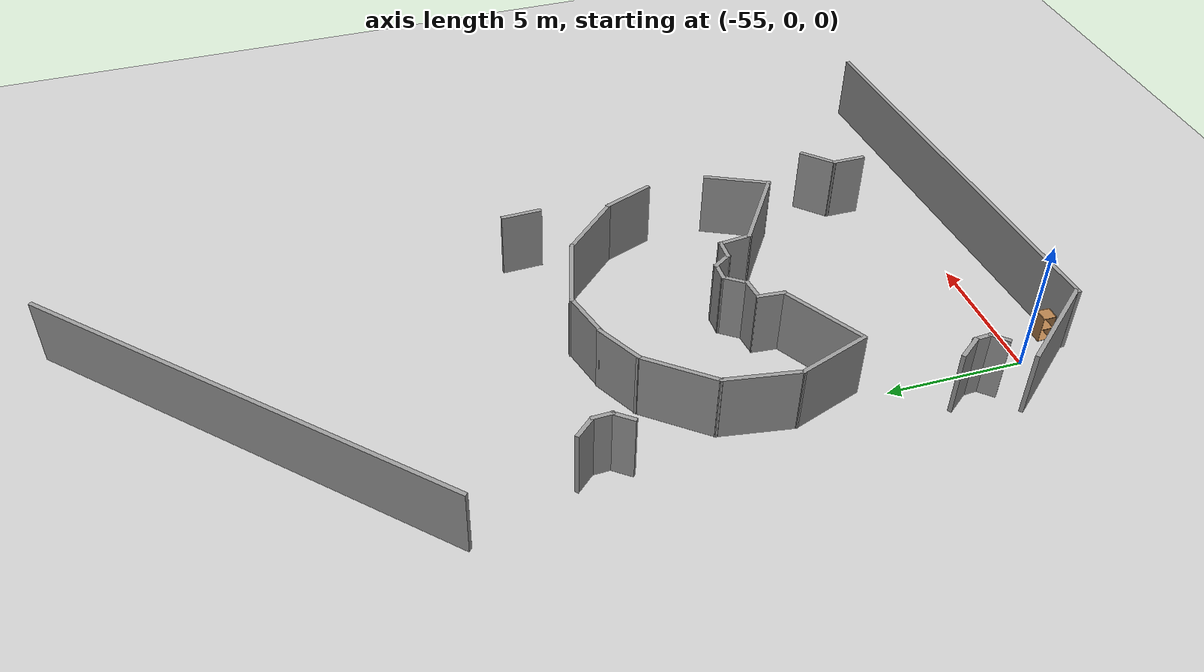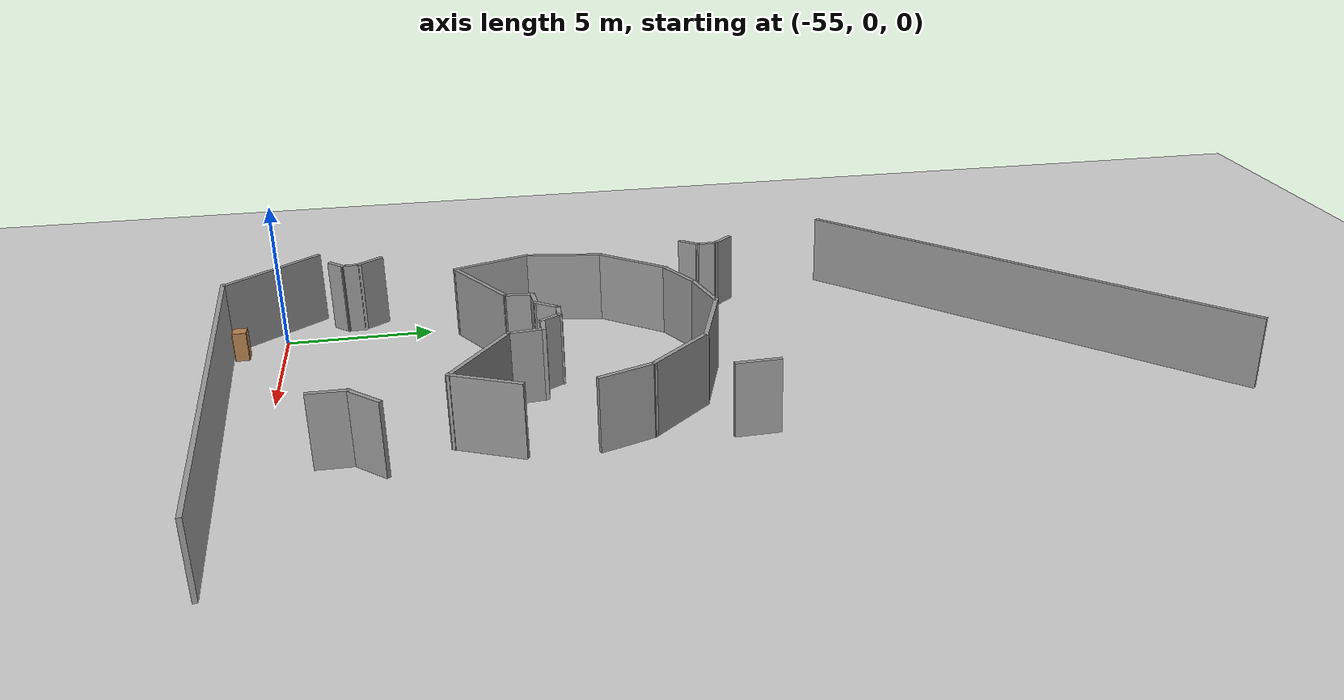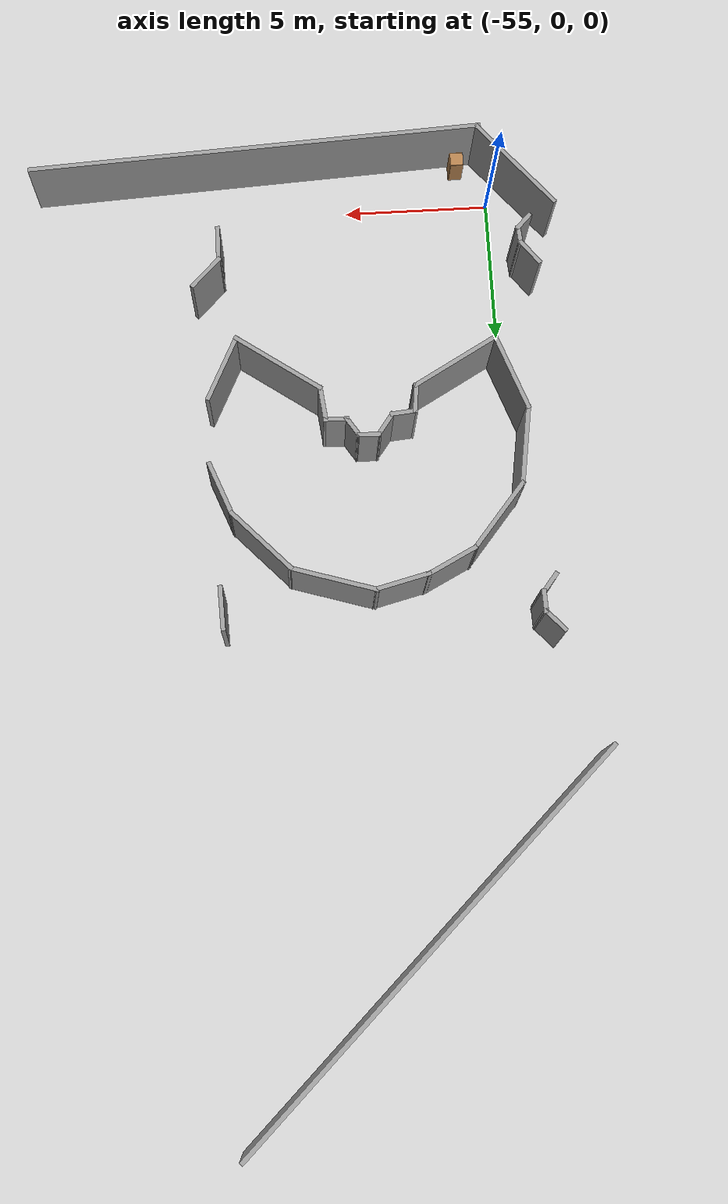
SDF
<sdf version="1.6">
 <world name="default">
  <model name="ground_plane">
   <static>1</static>
   <link name="link">
    <collision name="collision">
     <geometry><plane><normal>0 0 1</normal><size>100 100</size></plane></geometry>
     <surface><friction><ode><mu>100</mu><mu2>50</mu2></ode></friction></surface>
    </collision>
    <visual name="visual">
     <cast_shadows>0</cast_shadows>
     <geometry><plane><normal>0 0 1</normal><size>100 100</size></plane></geometry>
     <material>
      <script><uri>file://media/materials/scripts/gazebo.material</uri><name>Gazebo/Grey</name></script>
     </material>
    </visual>
   </link>
  </model>
  <model name="mall_new_reduce_size">
   <pose>-6.8092 7.5529 0 0 -0 0</pose>
   <link name="Wall_15">
    <collision name="Wall_15_Collision">
     <geometry><box><size>17.0313 0.15 2.5</size></box></geometry>
     <pose>0 0 1.25 0 -0 0</pose>
    </collision>
    <visual name="Wall_15_Visual">
     <pose>0 0 1.25 0 -0 0</pose>
     <geometry><box><size>17.0313 0.15 2.5</size></box></geometry>
     <material>
      <script><uri>file://media/materials/scripts/gazebo.material</uri><name>Gazebo/Grey</name></script>
      <ambient>1 1 1 1</ambient>
     </material>
     <meta><layer>0</layer></meta>
    </visual>
    <pose>-44.3443 18.1837 0 0 -0 0.766862</pose>
   </link>
   <link name="Wall_316">
    <collision name="Wall_316_Collision">
     <geometry><box><size>15.666 0.15 2.5</size></box></geometry>
     <pose>0 0 1.25 0 -0 0</pose>
    </collision>
    <visual name="Wall_316_Visual">
     <pose>0 0 1.25 0 -0 0</pose>
     <geometry><box><size>15.666 0.15 2.5</size></box></geometry>
     <material>
      <script><uri>file://media/materials/scripts/gazebo.material</uri><name>Gazebo/Grey</name></script>
      <ambient>1 1 1 1</ambient>
     </material>
     <meta><layer>0</layer></meta>
    </visual>
    <pose>-40.0804 -8.94499 0 0 -0 0.056231</pose>
   </link>
   <link name="Wall_350">
    <collision name="Wall_350_Collision">
     <geometry><box><size>1.28376 0.15 2.5</size></box></geometry>
     <pose>0 0 1.25 0 -0 0</pose>
    </collision>
    <visual name="Wall_350_Visual">
     <pose>0 0 1.25 0 -0 0</pose>
     <geometry><box><size>1.28376 0.15 2.5</size></box></geometry>
     <material>
      <script><uri>file://media/materials/scripts/gazebo.material</uri><name>Gazebo/Grey</name></script>
      <ambient>1 1 1 1</ambient>
     </material>
     <meta><layer>0</layer></meta>
    </visual>
    <pose>-38.673 -5.39908 0 0 -0 1.56336</pose>
   </link>
   <link name="Wall_351">
    <collision name="Wall_351_Collision">
     <geometry><box><size>1.42952 0.15 2.5</size></box></geometry>
     <pose>0 0 1.25 0 -0 0</pose>
    </collision>
    <visual name="Wall_351_Visual">
     <pose>0 0 1.25 0 -0 0</pose>
     <geometry><box><size>1.42952 0.15 2.5</size></box></geometry>
     <material>
      <script><uri>file://media/materials/scripts/gazebo.material</uri><name>Gazebo/Grey</name></script>
      <ambient>1 1 1 1</ambient>
     </material>
     <meta><layer>0</layer></meta>
    </visual>
    <pose>-38.2264 -4.36991 0 0 -0 0.78871</pose>
   </link>
   <link name="Wall_358">
    <collision name="Wall_358_Collision">
     <geometry><box><size>3.19362 0.15 2.5</size></box></geometry>
     <pose>0 0 1.25 0 -0 0</pose>
    </collision>
    <visual name="Wall_358_Visual">
     <pose>0 0 1.25 0 -0 0</pose>
     <geometry><box><size>3.19362 0.15 2.5</size></box></geometry>
     <material>
      <script><uri>file://media/materials/scripts/gazebo.material</uri><name>Gazebo/Grey</name></script>
      <ambient>1 1 1 1</ambient>
     </material>
     <meta><layer>0</layer></meta>
    </visual>
    <pose>-46.3456 -0.707961 0 0 -0 0.516499</pose>
   </link>
   <link name="Wall_359">
    <collision name="Wall_359_Collision">
     <geometry><box><size>1.04111 0.15 2.5</size></box></geometry>
     <pose>0 0 1.25 0 -0 0</pose>
    </collision>
    <visual name="Wall_359_Visual">
     <pose>0 0 1.25 0 -0 0</pose>
     <geometry><box><size>1.04111 0.15 2.5</size></box></geometry>
     <material>
      <script><uri>file://media/materials/scripts/gazebo.material</uri><name>Gazebo/Grey</name></script>
      <ambient>1 1 1 1</ambient>
     </material>
     <meta><layer>0</layer></meta>
    </visual>
    <pose>-44.9848 0.498691 0 0 -0 1.4865</pose>
   </link>
   <link name="Wall_360">
    <collision name="Wall_360_Collision">
     <geometry><box><size>0.919989 0.15 2.5</size></box></geometry>
     <pose>0 0 1.25 0 -0 0</pose>
    </collision>
    <visual name="Wall_360_Visual">
     <pose>0 0 1.25 0 -0 0</pose>
     <geometry><box><size>0.919989 0.15 2.5</size></box></geometry>
     <material>
      <script><uri>file://media/materials/scripts/gazebo.material</uri><name>Gazebo/Grey</name></script>
      <ambient>1 1 1 1</ambient>
     </material>
     <meta><layer>0</layer></meta>
    </visual>
    <pose>-44.5529 0.979904 0 0 -0 0.096885</pose>
   </link>
   <link name="Wall_361">
    <collision name="Wall_361_Collision">
     <geometry><box><size>0.974663 0.15 2.5</size></box></geometry>
     <pose>0 0 1.25 0 -0 0</pose>
    </collision>
    <visual name="Wall_361_Visual">
     <pose>0 0 1.25 0 -0 0</pose>
     <geometry><box><size>0.974663 0.15 2.5</size></box></geometry>
     <material>
      <script><uri>file://media/materials/scripts/gazebo.material</uri><name>Gazebo/Grey</name></script>
      <ambient>1 1 1 1</ambient>
     </material>
     <meta><layer>0</layer></meta>
    </visual>
    <pose>-43.9353 1.35039 0 0 -0 0.941096</pose>
   </link>
   <link name="Wall_362">
    <collision name="Wall_362_Collision">
     <geometry><box><size>0.806122 0.15 2.5</size></box></geometry>
     <pose>0 0 1.25 0 -0 0</pose>
    </collision>
    <visual name="Wall_362_Visual">
     <pose>0 0 1.25 0 -0 0</pose>
     <geometry><box><size>0.806122 0.15 2.5</size></box></geometry>
     <material>
      <script><uri>file://media/materials/scripts/gazebo.material</uri><name>Gazebo/Grey</name></script>
      <ambient>1 1 1 1</ambient>
     </material>
     <meta><layer>0</layer></meta>
    </visual>
    <pose>-43.3645 1.68786 0 0 -0 -0.012851</pose>
   </link>
   <link name="Wall_363">
    <collision name="Wall_363_Collision">
     <geometry><box><size>0.82835 0.15 2.5</size></box></geometry>
     <pose>0 0 1.25 0 -0 0</pose>
    </collision>
    <visual name="Wall_363_Visual">
     <pose>0 0 1.25 0 -0 0</pose>
     <geometry><box><size>0.82835 0.15 2.5</size></box></geometry>
     <material>
      <script><uri>file://media/materials/scripts/gazebo.material</uri><name>Gazebo/Grey</name></script>
      <ambient>1 1 1 1</ambient>
     </material>
     <meta><layer>0</layer></meta>
    </visual>
    <pose>-42.8527 1.39011 0 0 -0 -0.998351</pose>
   </link>
   <link name="Wall_364">
    <collision name="Wall_364_Collision">
     <geometry><box><size>0.847899 0.15 2.5</size></box></geometry>
     <pose>0 0 1.25 0 -0 0</pose>
    </collision>
    <visual name="Wall_364_Visual">
     <pose>0 0 1.25 0 -0 0</pose>
     <geometry><box><size>0.847899 0.15 2.5</size></box></geometry>
     <material>
      <script><uri>file://media/materials/scripts/gazebo.material</uri><name>Gazebo/Grey</name></script>
      <ambient>1 1 1 1</ambient>
     </material>
     <meta><layer>0</layer></meta>
    </visual>
    <pose>-42.3118 1.09481 0 0 -0 -0.029209</pose>
   </link>
   <link name="Wall_365">
    <collision name="Wall_365_Collision">
     <geometry><box><size>1.27005 0.15 2.5</size></box></geometry>
     <pose>0 0 1.25 0 -0 0</pose>
    </collision>
    <visual name="Wall_365_Visual">
     <pose>0 0 1.25 0 -0 0</pose>
     <geometry><box><size>1.27005 0.15 2.5</size></box></geometry>
     <material>
      <script><uri>file://media/materials/scripts/gazebo.material</uri><name>Gazebo/Grey</name></script>
      <ambient>1 1 1 1</ambient>
     </material>
     <meta><layer>0</layer></meta>
    </visual>
    <pose>-41.9091 0.528067 0 0 -0 -1.45941</pose>
   </link>
   <link name="Wall_366">
    <collision name="Wall_366_Collision">
     <geometry><box><size>3.45516 0.15 2.5</size></box></geometry>
     <pose>0 0 1.25 0 -0 0</pose>
    </collision>
    <visual name="Wall_366_Visual">
     <pose>0 0 1.25 0 -0 0</pose>
     <geometry><box><size>3.45516 0.15 2.5</size></box></geometry>
     <material>
      <script><uri>file://media/materials/scripts/gazebo.material</uri><name>Gazebo/Grey</name></script>
      <ambient>1 1 1 1</ambient>
     </material>
     <meta><layer>0</layer></meta>
    </visual>
    <pose>-40.4877 -0.988988 0 0 -0 -0.613962</pose>
   </link>
   <link name="Wall_367">
    <collision name="Wall_367_Collision">
     <geometry><box><size>2.46444 0.15 2.5</size></box></geometry>
     <pose>0 0 1.25 0 -0 0</pose>
    </collision>
    <visual name="Wall_367_Visual">
     <pose>0 0 1.25 0 -0 0</pose>
     <geometry><box><size>2.46444 0.15 2.5</size></box></geometry>
     <material>
      <script><uri>file://media/materials/scripts/gazebo.material</uri><name>Gazebo/Grey</name></script>
      <ambient>1 1 1 1</ambient>
     </material>
     <meta><layer>0</layer></meta>
    </visual>
    <pose>-38.6407 -0.899676 0 0 -0 1.11954</pose>
   </link>
   <link name="Wall_369">
    <collision name="Wall_369_Collision">
     <geometry><box><size>1.98148 0.15 2.5</size></box></geometry>
     <pose>0 0 1.25 0 -0 0</pose>
    </collision>
    <visual name="Wall_369_Visual">
     <pose>0 0 1.25 0 -0 0</pose>
     <geometry><box><size>1.98148 0.15 2.5</size></box></geometry>
     <material>
      <script><uri>file://media/materials/scripts/gazebo.material</uri><name>Gazebo/Grey</name></script>
      <ambient>1 1 1 1</ambient>
     </material>
     <meta><layer>0</layer></meta>
    </visual>
    <pose>-38.4143 3.2789 0 0 -0 1.93811</pose>
   </link>
   <link name="Wall_370">
    <collision name="Wall_370_Collision">
     <geometry><box><size>2.80655 0.15 2.5</size></box></geometry>
     <pose>0 0 1.25 0 -0 0</pose>
    </collision>
    <visual name="Wall_370_Visual">
     <pose>0 0 1.25 0 -0 0</pose>
     <geometry><box><size>2.80655 0.15 2.5</size></box></geometry>
     <material>
      <script><uri>file://media/materials/scripts/gazebo.material</uri><name>Gazebo/Grey</name></script>
      <ambient>1 1 1 1</ambient>
     </material>
     <meta><layer>0</layer></meta>
    </visual>
    <pose>-39.6621 5.10061 0 0 -0 2.32612</pose>
   </link>
   <link name="Wall_372">
    <collision name="Wall_372_Collision">
     <geometry><box><size>3.01709 0.15 2.5</size></box></geometry>
     <pose>0 0 1.25 0 -0 0</pose>
    </collision>
    <visual name="Wall_372_Visual">
     <pose>0 0 1.25 0 -0 0</pose>
     <geometry><box><size>3.01709 0.15 2.5</size></box></geometry>
     <material>
      <script><uri>file://media/materials/scripts/gazebo.material</uri><name>Gazebo/Grey</name></script>
      <ambient>1 1 1 1</ambient>
     </material>
     <meta><layer>0</layer></meta>
    </visual>
    <pose>-41.9417 6.50761 0 0 -0 2.84045</pose>
   </link>
   <link name="Wall_373">
    <collision name="Wall_373_Collision">
     <geometry><box><size>1.91289 0.15 2.5</size></box></geometry>
     <pose>0 0 1.25 0 -0 0</pose>
    </collision>
    <visual name="Wall_373_Visual">
     <pose>0 0 1.25 0 -0 0</pose>
     <geometry><box><size>1.91289 0.15 2.5</size></box></geometry>
     <material>
      <script><uri>file://media/materials/scripts/gazebo.material</uri><name>Gazebo/Grey</name></script>
      <ambient>1 1 1 1</ambient>
     </material>
     <meta><layer>0</layer></meta>
    </visual>
    <pose>-44.1511 6.70423 0 0 -0 -2.89655</pose>
   </link>
   <link name="Wall_374">
    <collision name="Wall_374_Collision">
     <geometry><box><size>1.87613 0.15 2.5</size></box></geometry>
     <pose>0 0 1.25 0 -0 0</pose>
    </collision>
    <visual name="Wall_374_Visual">
     <pose>0 0 1.25 0 -0 0</pose>
     <geometry><box><size>1.87613 0.15 2.5</size></box></geometry>
     <material>
      <script><uri>file://media/materials/scripts/gazebo.material</uri><name>Gazebo/Grey</name></script>
      <ambient>1 1 1 1</ambient>
     </material>
     <meta><layer>0</layer></meta>
    </visual>
    <pose>-45.7738 6.11041 0 0 -0 -2.66657</pose>
   </link>
   <link name="Wall_375">
    <collision name="Wall_375_Collision">
     <geometry><box><size>2.86167 0.15 2.5</size></box></geometry>
     <pose>0 0 1.25 0 -0 0</pose>
    </collision>
    <visual name="Wall_375_Visual">
     <pose>0 0 1.25 0 -0 0</pose>
     <geometry><box><size>2.86167 0.15 2.5</size></box></geometry>
     <material>
      <script><uri>file://media/materials/scripts/gazebo.material</uri><name>Gazebo/Grey</name></script>
      <ambient>1 1 1 1</ambient>
     </material>
     <meta><layer>0</layer></meta>
    </visual>
    <pose>-47.4141 4.66594 0 0 -0 -2.25608</pose>
   </link>
   <link name="Wall_376">
    <collision name="Wall_376_Collision">
     <geometry><box><size>2.77757 0.15 2.5</size></box></geometry>
     <pose>0 0 1.25 0 -0 0</pose>
    </collision>
    <visual name="Wall_376_Visual">
     <pose>0 0 1.25 0 -0 0</pose>
     <geometry><box><size>2.77757 0.15 2.5</size></box></geometry>
     <material>
      <script><uri>file://media/materials/scripts/gazebo.material</uri><name>Gazebo/Grey</name></script>
      <ambient>1 1 1 1</ambient>
     </material>
     <meta><layer>0</layer></meta>
    </visual>
    <pose>-48.4747 2.30335 0 0 -0 -1.72552</pose>
   </link>
   <link name="Wall_377">
    <collision name="Wall_377_Collision">
     <geometry><box><size>2.81467 0.15 2.5</size></box></geometry>
     <pose>0 0 1.25 0 -0 0</pose>
    </collision>
    <visual name="Wall_377_Visual">
     <pose>0 0 1.25 0 -0 0</pose>
     <geometry><box><size>2.81467 0.15 2.5</size></box></geometry>
     <material>
      <script><uri>file://media/materials/scripts/gazebo.material</uri><name>Gazebo/Grey</name></script>
      <ambient>1 1 1 1</ambient>
     </material>
     <meta><layer>0</layer></meta>
    </visual>
    <pose>-48.2323 -0.265382 0 0 -0 -1.23042</pose>
   </link>
   <link name="Wall_387">
    <collision name="Wall_387_Collision">
     <geometry><box><size>1.49648 0.15 2.5</size></box></geometry>
     <pose>0 0 1.25 0 -0 0</pose>
    </collision>
    <visual name="Wall_387_Visual">
     <pose>0 0 1.25 0 -0 0</pose>
     <geometry><box><size>1.49648 0.15 2.5</size></box></geometry>
     <material>
      <script><uri>file://media/materials/scripts/gazebo.material</uri><name>Gazebo/Grey</name></script>
      <ambient>1 1 1 1</ambient>
     </material>
     <meta><layer>0</layer></meta>
    </visual>
    <pose>-38.2994 7.2698 0 0 -0 1.60394</pose>
   </link>
   <link name="Wall_392">
    <collision name="Wall_392_Collision">
     <geometry><box><size>0.977816 0.15 2.5</size></box></geometry>
     <pose>0 0 1.25 0 -0 0</pose>
    </collision>
    <visual name="Wall_392_Visual">
     <pose>0 0 1.25 0 -0 0</pose>
     <geometry><box><size>0.977816 0.15 2.5</size></box></geometry>
     <material>
      <script><uri>file://media/materials/scripts/gazebo.material</uri><name>Gazebo/Grey</name></script>
      <ambient>1 1 1 1</ambient>
     </material>
     <meta><layer>0</layer></meta>
    </visual>
    <pose>-48.9309 8.24512 0 0 -0 -0.842257</pose>
   </link>
   <link name="Wall_393">
    <collision name="Wall_393_Collision">
     <geometry><box><size>0.800275 0.15 2.5</size></box></geometry>
     <pose>0 0 1.25 0 -0 0</pose>
    </collision>
    <visual name="Wall_393_Visual">
     <pose>0 0 1.25 0 -0 0</pose>
     <geometry><box><size>0.800275 0.15 2.5</size></box></geometry>
     <material>
      <script><uri>file://media/materials/scripts/gazebo.material</uri><name>Gazebo/Grey</name></script>
      <ambient>1 1 1 1</ambient>
     </material>
     <meta><layer>0</layer></meta>
    </visual>
    <pose>-48.6442 7.60579 0 0 -0 -1.53669</pose>
   </link>
   <link name="Wall_394">
    <collision name="Wall_394_Collision">
     <geometry><box><size>0.859742 0.15 2.5</size></box></geometry>
     <pose>0 0 1.25 0 -0 0</pose>
    </collision>
    <visual name="Wall_394_Visual">
     <pose>0 0 1.25 0 -0 0</pose>
     <geometry><box><size>0.859742 0.15 2.5</size></box></geometry>
     <material>
      <script><uri>file://media/materials/scripts/gazebo.material</uri><name>Gazebo/Grey</name></script>
      <ambient>1 1 1 1</ambient>
     </material>
     <meta><layer>0</layer></meta>
    </visual>
    <pose>-48.8588 7.00804 0 0 -0 -2.23994</pose>
   </link>
   <link name="Wall_441">
    <collision name="Wall_441_Collision">
     <geometry><box><size>1.05702 0.15 2.5</size></box></geometry>
     <pose>0 0 1.25 0 -0 0</pose>
    </collision>
    <visual name="Wall_441_Visual">
     <pose>0 0 1.25 0 -0 0</pose>
     <geometry><box><size>1.05702 0.15 2.5</size></box></geometry>
     <material>
      <script><uri>file://media/materials/scripts/gazebo.material</uri><name>Gazebo/Grey</name></script>
      <ambient>1 1 1 1</ambient>
     </material>
     <meta><layer>0</layer></meta>
    </visual>
    <pose>-49.2136 -4.53268 0 0 -0 -0.928706</pose>
   </link>
   <link name="Wall_442">
    <collision name="Wall_442_Collision">
     <geometry><box><size>0.712069 0.15 2.5</size></box></geometry>
     <pose>0 0 1.25 0 -0 0</pose>
    </collision>
    <visual name="Wall_442_Visual">
     <pose>0 0 1.25 0 -0 0</pose>
     <geometry><box><size>0.712069 0.15 2.5</size></box></geometry>
     <material>
      <script><uri>file://media/materials/scripts/gazebo.material</uri><name>Gazebo/Grey</name></script>
      <ambient>1 1 1 1</ambient>
     </material>
     <meta><layer>0</layer></meta>
    </visual>
    <pose>-48.9034 -5.1666 0 0 -0 -1.50212</pose>
   </link>
   <link name="Wall_443">
    <collision name="Wall_443_Collision">
     <geometry><box><size>0.745598 0.15 2.5</size></box></geometry>
     <pose>0 0 1.25 0 -0 0</pose>
    </collision>
    <visual name="Wall_443_Visual">
     <pose>0 0 1.25 0 -0 0</pose>
     <geometry><box><size>0.745598 0.15 2.5</size></box></geometry>
     <material>
      <script><uri>file://media/materials/scripts/gazebo.material</uri><name>Gazebo/Grey</name></script>
      <ambient>1 1 1 1</ambient>
     </material>
     <meta><layer>0</layer></meta>
    </visual>
    <pose>-49.0898 -5.67195 0 0 -0 -2.3333</pose>
   </link>
   <link name="Wall_446">
    <collision name="Wall_446_Collision">
     <geometry><box><size>3.93279 0.15 2.5</size></box></geometry>
     <pose>0 0 1.25 0 -0 0</pose>
    </collision>
    <visual name="Wall_446_Visual">
     <pose>0 0 1.25 0 -0 0</pose>
     <geometry><box><size>3.93279 0.15 2.5</size></box></geometry>
     <material>
      <script><uri>file://media/materials/scripts/gazebo.material</uri><name>Gazebo/Grey</name></script>
      <ambient>1 1 1 1</ambient>
     </material>
     <meta><layer>0</layer></meta>
    </visual>
    <pose>-48.9826 -7.86273 0 0 -0 -0.886501</pose>
   </link>
   <static>1</static>
  </model>
  <model name="cabinet_3">
   <static>1</static>
   <link name="cabinet_bottom_plate">
    <inertial>
     <pose>0 0 -1 0 -0 0</pose>
     <inertia><ixx>2.05</ixx><ixy>0</ixy><ixz>0</ixz><iyy>2.05</iyy><iyz>0</iyz><izz>2.05</izz></inertia>
     <mass>25</mass>
    </inertial>
    <collision name="cabinet_bottom_plate_geom">
     <pose>0 0 0.01 0 -0 0</pose>
     <geometry><box><size>0.45 0.45 0.02</size></box></geometry>
    </collision>
    <visual name="cabinet_bottom_plate_geom_visual">
     <pose>0 0 0.01 0 -0 0</pose>
     <geometry><box><size>0.45 0.45 0.02</size></box></geometry>
     <material>
      <script><uri>file://media/materials/scripts/gazebo.material</uri><name>Gazebo/Wood</name></script>
     </material>
    </visual>
    <collision name="cabinet_bottom_plate_geom_cabinet_back_plate">
     <pose>0.235 0 0.51 0 -0 0</pose>
     <geometry><box><size>0.02 0.45 1.02</size></box></geometry>
    </collision>
    <visual name="cabinet_bottom_plate_geom_cabinet_back_plate_visual">
     <pose>0.235 0 0.51 0 -0 0</pose>
     <geometry><box><size>0.02 0.45 1.02</size></box></geometry>
     <material>
      <script><uri>file://media/materials/scripts/gazebo.material</uri><name>Gazebo/Wood</name></script>
     </material>
    </visual>
    <collision name="cabinet_bottom_plate_geom_cabinet_left_plate">
     <pose>0 0.235 0.51 0 -0 0</pose>
     <geometry><box><size>0.45 0.02 1.02</size></box></geometry>
    </collision>
    <visual name="cabinet_bottom_plate_geom_cabinet_left_plate_visual">
     <pose>0 0.235 0.51 0 -0 0</pose>
     <geometry><box><size>0.45 0.02 1.02</size></box></geometry>
     <material>
      <script><uri>file://media/materials/scripts/gazebo.material</uri><name>Gazebo/Wood</name></script>
     </material>
    </visual>
    <collision name="cabinet_bottom_plate_geom_cabinet_middle_plate">
     <pose>0 0 0.51 0 -0 0</pose>
     <geometry><box><size>0.45 0.45 0.02</size></box></geometry>
    </collision>
    <visual name="cabinet_bottom_plate_geom_cabinet_middle_plate_visual">
     <pose>0 0 0.51 0 -0 0</pose>
     <geometry><box><size>0.45 0.45 0.02</size></box></geometry>
     <material>
      <script><uri>file://media/materials/scripts/gazebo.material</uri><name>Gazebo/Wood</name></script>
     </material>
    </visual>
    <collision name="cabinet_bottom_plate_geom_cabinet_right_plate">
     <pose>0 -0.235 0.51 0 -0 0</pose>
     <geometry><box><size>0.45 0.02 1.02</size></box></geometry>
    </collision>
    <visual name="cabinet_bottom_plate_geom_cabinet_right_plate_visual">
     <pose>0 -0.235 0.51 0 -0 0</pose>
     <geometry><box><size>0.45 0.02 1.02</size></box></geometry>
     <material>
      <script><uri>file://media/materials/scripts/gazebo.material</uri><name>Gazebo/Wood</name></script>
     </material>
    </visual>
    <collision name="cabinet_bottom_plate_geom_cabinet_top_plate">
     <pose>0 0 1.01 0 -0 0</pose>
     <geometry><box><size>0.45 0.45 0.02</size></box></geometry>
    </collision>
    <visual name="cabinet_bottom_plate_geom_cabinet_top_plate_visual">
     <pose>0 0 1.01 0 -0 0</pose>
     <geometry><box><size>0.45 0.45 0.02</size></box></geometry>
     <material>
      <script><uri>file://media/materials/scripts/gazebo.material</uri><name>Gazebo/Wood</name></script>
     </material>
    </visual>
   </link>
   <pose>-53.9926 -1.41288 0 0 -0 0</pose>
  </model>
 </world>
</sdf>
